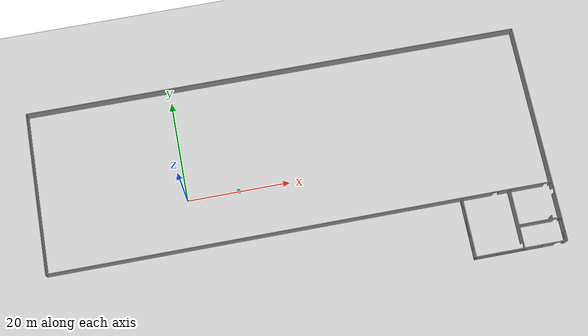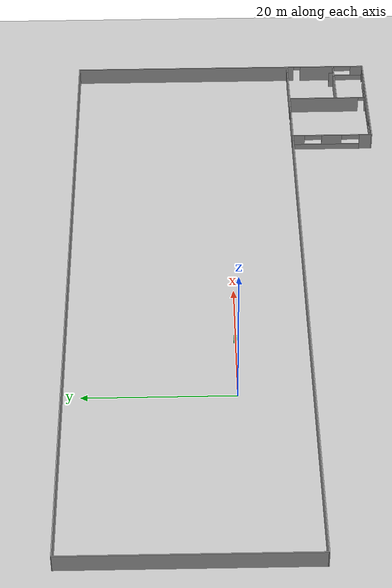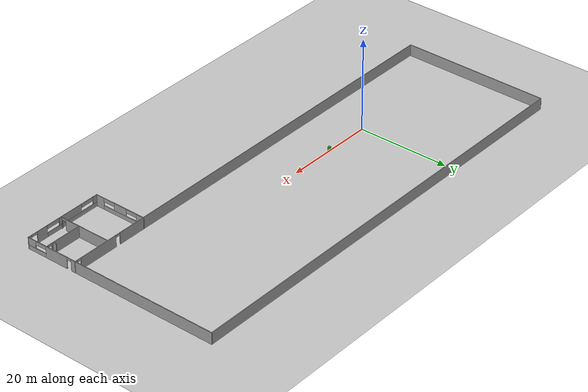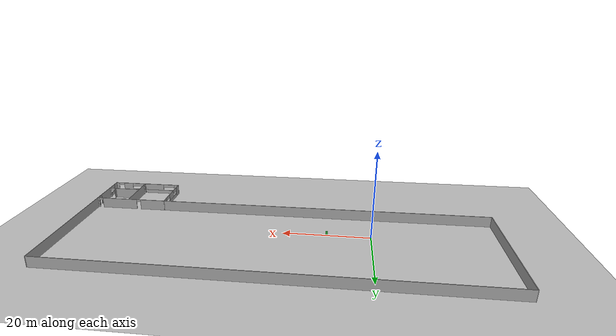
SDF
<sdf version="1.6">
 <world name="default">
  <light name="sun" type="directional">
   <pose>0 0 10 0 -0 0</pose>
   <diffuse>0.8 0.8 0.8 1</diffuse>
   <specular>0.1 0.1 0.1 1</specular>
   <attenuation>
    <range>1000</range>
    <constant>0.9</constant>
    <linear>0.01</linear>
    <quadratic>0.001</quadratic>
   </attenuation>
   <direction>-0.5 0.5 -1</direction>
  </light>
  <model name="ground_plane">
   <static>1</static>
   <link name="link">
    <collision name="collision">
     <geometry><plane><normal>0 0 1</normal><size>100 100</size></plane></geometry>
     <surface><friction><ode><mu>100</mu><mu2>50</mu2></ode></friction></surface>
    </collision>
    <visual name="visual">
     <cast_shadows>0</cast_shadows>
     <geometry><plane><normal>0 0 1</normal><size>100 100</size></plane></geometry>
     <material>
      <script><uri>file://media/materials/scripts/gazebo.material</uri><name>Gazebo/Grey</name></script>
     </material>
    </visual>
   </link>
  </model>
  <gravity>0 0 -9.8</gravity>
  <magnetic_field>6e-06 2.3e-05 -4.2e-05</magnetic_field>
  <atmosphere type="adiabatic"/>
  <physics name="default_physics" default="0" type="ode">
   <max_step_size>0.001</max_step_size>
   <real_time_factor>1</real_time_factor>
   <real_time_update_rate>1000</real_time_update_rate>
  </physics>
  <scene><ambient>0.4 0.4 0.4 1</ambient><background>0.7 0.7 0.7 1</background><shadows>1</shadows></scene>
  <spherical_coordinates>
   <surface_model>EARTH_WGS84</surface_model>
   <latitude_deg>0</latitude_deg>
   <longitude_deg>0</longitude_deg>
   <elevation>0</elevation>
   <heading_deg>0</heading_deg>
  </spherical_coordinates>
  <model name="custom_ground_plane_box">
   <pose>10 0 0.5 0 0 0</pose>
   <link name="link">
    <inertial>
     <mass>100</mass>
     <inertia>
      <ixx>3.33341666667e+3</ixx>
      <ixy>0.0</ixy>
      <ixz>0.0</ixz>
      <iyy>3.33341666667e+3</iyy>
      <iyz>0.0</iyz>
      <izz>6.66666666667e+3</izz>
     </inertia>
    </inertial>
    <collision name="collision">
     <geometry><box><size>0.5 0.5 1.0</size></box></geometry>
     <surface><friction><ode><mu>0</mu><mu2>0</mu2></ode></friction></surface>
    </collision>
    <visual name="visual">
     <geometry><box><size>0.5 0.5 1.0</size></box></geometry>
     <material>
      <script><uri>file://media/materials/scripts/gazebo.material</uri><name>Gazebo/Green</name></script>
     </material>
    </visual>
   </link>
   <plugin name="plannar_mover_plugin" filename="libplannar_mover_plugin.so"/>
  </model>
  <model name="Nave_v1">
   <pose>20.4908 0.522745 0 0 -0 0</pose>
   <link name="Wall_0">
    <collision name="Wall_0_Collision">
     <geometry><box><size>97.25 0.15 2.5</size></box></geometry>
     <pose>0 0 1.25 0 -0 0</pose>
    </collision>
    <visual name="Wall_0_Visual">
     <pose>0 0 1.25 0 -0 0</pose>
     <geometry><box><size>97.25 0.15 2.5</size></box></geometry>
     <material>
      <script><uri>file://media/materials/scripts/gazebo.material</uri><name>Gazebo/Grey</name></script>
      <ambient>1 1 1 1</ambient>
     </material>
    </visual>
    <pose>0.050116 21.8052 0 0 -0 0</pose>
   </link>
   <link name="Wall_1">
    <pose>48.6001 0.005216 0 0 0 -1.5708</pose>
    <visual name="Wall_1_Visual_0">
     <pose>-5.33146 0 1.25 0 -0 0</pose>
     <geometry><box><size>33.0871 0.15 2.5</size></box></geometry>
     <material>
      <script><uri>file://media/materials/scripts/gazebo.material</uri><name>Gazebo/Grey</name></script>
      <ambient>1 1 1 1</ambient>
     </material>
    </visual>
    <collision name="Wall_1_Collision_0">
     <geometry><box><size>33.0871 0.15 2.5</size></box></geometry>
     <pose>-5.33146 0 1.25 0 -0 0</pose>
    </collision>
    <visual name="Wall_1_Visual_1">
     <pose>14.8285 0 1.25 0 -0 0</pose>
     <geometry><box><size>5.22356 0.15 2.5</size></box></geometry>
     <material>
      <script><uri>file://media/materials/scripts/gazebo.material</uri><name>Gazebo/Grey</name></script>
      <ambient>1 1 1 1</ambient>
     </material>
    </visual>
    <collision name="Wall_1_Collision_1">
     <geometry><box><size>5.22356 0.15 2.5</size></box></geometry>
     <pose>14.8285 0 1.25 0 -0 0</pose>
    </collision>
    <visual name="Wall_1_Visual_2">
     <pose>19.6576 0 0.45 0 -0 0</pose>
     <geometry><box><size>4.43476 0.15 0.9</size></box></geometry>
     <material>
      <script><uri>file://media/materials/scripts/gazebo.material</uri><name>Gazebo/Grey</name></script>
      <ambient>1 1 1 1</ambient>
     </material>
    </visual>
    <collision name="Wall_1_Collision_2">
     <geometry><box><size>4.43476 0.15 0.9</size></box></geometry>
     <pose>19.6576 0 0.45 0 -0 0</pose>
    </collision>
    <visual name="Wall_1_Visual_3">
     <pose>20.9226 0 1.7 0 -0 0</pose>
     <geometry><box><size>1.90476 0.15 1.6</size></box></geometry>
     <material>
      <script><uri>file://media/materials/scripts/gazebo.material</uri><name>Gazebo/Grey</name></script>
      <ambient>1 1 1 1</ambient>
     </material>
    </visual>
    <collision name="Wall_1_Collision_3">
     <geometry><box><size>1.90476 0.15 1.6</size></box></geometry>
     <pose>20.9226 0 1.7 0 -0 0</pose>
    </collision>
    <visual name="Wall_1_Visual_4">
     <pose>18.7052 0 2.1 0 -0 0</pose>
     <geometry><box><size>2.53 0.15 0.8</size></box></geometry>
     <material>
      <script><uri>file://media/materials/scripts/gazebo.material</uri><name>Gazebo/Grey</name></script>
      <ambient>1 1 1 1</ambient>
     </material>
    </visual>
    <collision name="Wall_1_Collision_4">
     <geometry><box><size>2.53 0.15 0.8</size></box></geometry>
     <pose>18.7052 0 2.1 0 -0 0</pose>
    </collision>
    <visual name="Wall_1_Visual_5">
     <pose>11.7144 0 2.25 0 -0 0</pose>
     <geometry><box><size>1.00461 0.15 0.5</size></box></geometry>
     <material>
      <script><uri>file://media/materials/scripts/gazebo.material</uri><name>Gazebo/Grey</name></script>
      <ambient>1 1 1 1</ambient>
     </material>
    </visual>
    <collision name="Wall_1_Collision_5">
     <geometry><box><size>1.00461 0.15 0.5</size></box></geometry>
     <pose>11.7144 0 2.25 0 -0 0</pose>
    </collision>
   </link>
   <link name="Wall_11">
    <collision name="Wall_11_Collision">
     <geometry><box><size>0.75 0.15 2.5</size></box></geometry>
     <pose>0 0 1.25 0 -0 0</pose>
    </collision>
    <visual name="Wall_11_Visual">
     <pose>0 0 1.25 0 -0 0</pose>
     <geometry><box><size>0.75 0.15 2.5</size></box></geometry>
     <material>
      <script><uri>file://media/materials/scripts/gazebo.material</uri><name>Gazebo/Grey</name></script>
      <ambient>1 1 1 1</ambient>
     </material>
    </visual>
    <pose>46.8854 -16.9349 0 0 -0 1.5708</pose>
   </link>
   <link name="Wall_17">
    <pose>44.4364 -17.284 0 0 -0 0</pose>
    <visual name="Wall_17_Visual_0">
     <pose>-0.642662 0 1.25 0 -0 0</pose>
     <geometry><box><size>6.96467 0.15 2.5</size></box></geometry>
     <material>
      <script><uri>file://media/materials/scripts/gazebo.material</uri><name>Gazebo/Grey</name></script>
      <ambient>1 1 1 1</ambient>
     </material>
    </visual>
    <collision name="Wall_17_Collision_0">
     <geometry><box><size>6.96467 0.15 2.5</size></box></geometry>
     <pose>-0.642662 0 1.25 0 -0 0</pose>
    </collision>
    <visual name="Wall_17_Visual_1">
     <pose>3.95508 0 1.25 0 -0 0</pose>
     <geometry><box><size>0.339843 0.15 2.5</size></box></geometry>
     <material>
      <script><uri>file://media/materials/scripts/gazebo.material</uri><name>Gazebo/Grey</name></script>
      <ambient>1 1 1 1</ambient>
     </material>
    </visual>
    <collision name="Wall_17_Collision_1">
     <geometry><box><size>0.339843 0.15 2.5</size></box></geometry>
     <pose>3.95508 0 1.25 0 -0 0</pose>
    </collision>
    <visual name="Wall_17_Visual_2">
     <pose>3.31242 0 2.25 0 -0 0</pose>
     <geometry><box><size>0.945482 0.15 0.5</size></box></geometry>
     <material>
      <script><uri>file://media/materials/scripts/gazebo.material</uri><name>Gazebo/Grey</name></script>
      <ambient>1 1 1 1</ambient>
     </material>
    </visual>
    <collision name="Wall_17_Collision_2">
     <geometry><box><size>0.945482 0.15 0.5</size></box></geometry>
     <pose>3.31242 0 2.25 0 -0 0</pose>
    </collision>
   </link>
   <link name="Wall_2">
    <pose>39.8001 -21.7948 0 0 -0 3.14159</pose>
    <visual name="Wall_2_Visual_0">
     <pose>-8.4772 0 1.25 0 -0 0</pose>
     <geometry><box><size>0.795596 0.15 2.5</size></box></geometry>
     <material>
      <script><uri>file://media/materials/scripts/gazebo.material</uri><name>Gazebo/Grey</name></script>
      <ambient>1 1 1 1</ambient>
     </material>
    </visual>
    <collision name="Wall_2_Collision_0">
     <geometry><box><size>0.795596 0.15 2.5</size></box></geometry>
     <pose>-8.4772 0 1.25 0 -0 0</pose>
    </collision>
    <visual name="Wall_2_Visual_1">
     <pose>-5.3555 0 1.25 0 -0 0</pose>
     <geometry><box><size>2.49435 0.15 2.5</size></box></geometry>
     <material>
      <script><uri>file://media/materials/scripts/gazebo.material</uri><name>Gazebo/Grey</name></script>
      <ambient>1 1 1 1</ambient>
     </material>
    </visual>
    <collision name="Wall_2_Collision_1">
     <geometry><box><size>2.49435 0.15 2.5</size></box></geometry>
     <pose>-5.3555 0 1.25 0 -0 0</pose>
    </collision>
    <visual name="Wall_2_Visual_2">
     <pose>2.38334 0 0.45 0 -0 0</pose>
     <geometry><box><size>12.9833 0.15 0.9</size></box></geometry>
     <material>
      <script><uri>file://media/materials/scripts/gazebo.material</uri><name>Gazebo/Grey</name></script>
      <ambient>1 1 1 1</ambient>
     </material>
    </visual>
    <collision name="Wall_2_Collision_2">
     <geometry><box><size>12.9833 0.15 0.9</size></box></geometry>
     <pose>2.38334 0 0.45 0 -0 0</pose>
    </collision>
    <visual name="Wall_2_Visual_3">
     <pose>1.78885 0 1.7 0 -0 0</pose>
     <geometry><box><size>5.74035 0.15 1.6</size></box></geometry>
     <material>
      <script><uri>file://media/materials/scripts/gazebo.material</uri><name>Gazebo/Grey</name></script>
      <ambient>1 1 1 1</ambient>
     </material>
    </visual>
    <collision name="Wall_2_Collision_3">
     <geometry><box><size>5.74035 0.15 1.6</size></box></geometry>
     <pose>1.78885 0 1.7 0 -0 0</pose>
    </collision>
    <visual name="Wall_2_Visual_4">
     <pose>8.28701 0 1.7 0 -0 0</pose>
     <geometry><box><size>1.17598 0.15 1.6</size></box></geometry>
     <material>
      <script><uri>file://media/materials/scripts/gazebo.material</uri><name>Gazebo/Grey</name></script>
      <ambient>1 1 1 1</ambient>
     </material>
    </visual>
    <collision name="Wall_2_Collision_4">
     <geometry><box><size>1.17598 0.15 1.6</size></box></geometry>
     <pose>8.28701 0 1.7 0 -0 0</pose>
    </collision>
    <visual name="Wall_2_Visual_5">
     <pose>-2.59483 0 2.1 0 -0 0</pose>
     <geometry><box><size>3.027 0.15 0.8</size></box></geometry>
     <material>
      <script><uri>file://media/materials/scripts/gazebo.material</uri><name>Gazebo/Grey</name></script>
      <ambient>1 1 1 1</ambient>
     </material>
    </visual>
    <collision name="Wall_2_Collision_5">
     <geometry><box><size>3.027 0.15 0.8</size></box></geometry>
     <pose>-2.59483 0 2.1 0 -0 0</pose>
    </collision>
    <visual name="Wall_2_Visual_6">
     <pose>6.17902 0 2.1 0 -0 0</pose>
     <geometry><box><size>3.04 0.15 0.8</size></box></geometry>
     <material>
      <script><uri>file://media/materials/scripts/gazebo.material</uri><name>Gazebo/Grey</name></script>
      <ambient>1 1 1 1</ambient>
     </material>
    </visual>
    <collision name="Wall_2_Collision_6">
     <geometry><box><size>3.04 0.15 0.8</size></box></geometry>
     <pose>6.17902 0 2.1 0 -0 0</pose>
    </collision>
    <visual name="Wall_2_Visual_7">
     <pose>-7.34104 0 2.25 0 -0 0</pose>
     <geometry><box><size>1.47673 0.15 0.5</size></box></geometry>
     <material>
      <script><uri>file://media/materials/scripts/gazebo.material</uri><name>Gazebo/Grey</name></script>
      <ambient>1 1 1 1</ambient>
     </material>
    </visual>
    <collision name="Wall_2_Collision_7">
     <geometry><box><size>1.47673 0.15 0.5</size></box></geometry>
     <pose>-7.34104 0 2.25 0 -0 0</pose>
    </collision>
   </link>
   <link name="Wall_3">
    <pose>31.0001 -15.9948 0 0 -0 1.5708</pose>
    <visual name="Wall_3_Visual_0">
     <pose>-4.92511 0 1.25 0 -0 0</pose>
     <geometry><box><size>1.89979 0.15 2.5</size></box></geometry>
     <material>
      <script><uri>file://media/materials/scripts/gazebo.material</uri><name>Gazebo/Grey</name></script>
      <ambient>1 1 1 1</ambient>
     </material>
    </visual>
    <collision name="Wall_3_Collision_0">
     <geometry><box><size>1.89979 0.15 2.5</size></box></geometry>
     <pose>-4.92511 0 1.25 0 -0 0</pose>
    </collision>
    <visual name="Wall_3_Visual_1">
     <pose>0.949893 0 0.45 0 -0 0</pose>
     <geometry><box><size>9.85021 0.15 0.9</size></box></geometry>
     <material>
      <script><uri>file://media/materials/scripts/gazebo.material</uri><name>Gazebo/Grey</name></script>
      <ambient>1 1 1 1</ambient>
     </material>
    </visual>
    <collision name="Wall_3_Collision_1">
     <geometry><box><size>9.85021 0.15 0.9</size></box></geometry>
     <pose>0.949893 0 0.45 0 -0 0</pose>
    </collision>
    <visual name="Wall_3_Visual_2">
     <pose>0.084169 0 1.7 0 -0 0</pose>
     <geometry><box><size>2.95077 0.15 1.6</size></box></geometry>
     <material>
      <script><uri>file://media/materials/scripts/gazebo.material</uri><name>Gazebo/Grey</name></script>
      <ambient>1 1 1 1</ambient>
     </material>
    </visual>
    <collision name="Wall_3_Collision_2">
     <geometry><box><size>2.95077 0.15 1.6</size></box></geometry>
     <pose>0.084169 0 1.7 0 -0 0</pose>
    </collision>
    <visual name="Wall_3_Visual_3">
     <pose>4.97478 0 1.7 0 -0 0</pose>
     <geometry><box><size>1.80045 0.15 1.6</size></box></geometry>
     <material>
      <script><uri>file://media/materials/scripts/gazebo.material</uri><name>Gazebo/Grey</name></script>
      <ambient>1 1 1 1</ambient>
     </material>
    </visual>
    <collision name="Wall_3_Collision_3">
     <geometry><box><size>1.80045 0.15 1.6</size></box></geometry>
     <pose>4.97478 0 1.7 0 -0 0</pose>
    </collision>
    <visual name="Wall_3_Visual_4">
     <pose>-2.68321 0 2.1 0 -0 0</pose>
     <geometry><box><size>2.584 0.15 0.8</size></box></geometry>
     <material>
      <script><uri>file://media/materials/scripts/gazebo.material</uri><name>Gazebo/Grey</name></script>
      <ambient>1 1 1 1</ambient>
     </material>
    </visual>
    <collision name="Wall_3_Collision_4">
     <geometry><box><size>2.584 0.15 0.8</size></box></geometry>
     <pose>-2.68321 0 2.1 0 -0 0</pose>
    </collision>
    <visual name="Wall_3_Visual_5">
     <pose>2.81705 0 2.1 0 -0 0</pose>
     <geometry><box><size>2.515 0.15 0.8</size></box></geometry>
     <material>
      <script><uri>file://media/materials/scripts/gazebo.material</uri><name>Gazebo/Grey</name></script>
      <ambient>1 1 1 1</ambient>
     </material>
    </visual>
    <collision name="Wall_3_Collision_5">
     <geometry><box><size>2.515 0.15 0.8</size></box></geometry>
     <pose>2.81705 0 2.1 0 -0 0</pose>
    </collision>
   </link>
   <link name="Wall_4">
    <collision name="Wall_4_Collision">
     <geometry><box><size>79.75 0.15 2.5</size></box></geometry>
     <pose>0 0 1.25 0 -0 0</pose>
    </collision>
    <visual name="Wall_4_Visual">
     <pose>0 0 1.25 0 -0 0</pose>
     <geometry><box><size>79.75 0.15 2.5</size></box></geometry>
     <material>
      <script><uri>file://media/materials/scripts/gazebo.material</uri><name>Gazebo/Grey</name></script>
      <ambient>1 1 1 1</ambient>
     </material>
    </visual>
    <pose>-8.79988 -10.1948 0 0 -0 3.14159</pose>
   </link>
   <link name="Wall_5">
    <collision name="Wall_5_Collision">
     <geometry><box><size>32.1502 0.15 2.5</size></box></geometry>
     <pose>0 0 1.25 0 -0 0</pose>
    </collision>
    <visual name="Wall_5_Visual">
     <pose>0 0 1.25 0 -0 0</pose>
     <geometry><box><size>32.1502 0.15 2.5</size></box></geometry>
     <material>
      <script><uri>file://media/materials/scripts/gazebo.material</uri><name>Gazebo/Grey</name></script>
      <ambient>1 1 1 1</ambient>
     </material>
    </visual>
    <pose>-48.5499 5.80522 0 0 -0 1.56767</pose>
   </link>
   <link name="Wall_7">
    <pose>39.8001 -10.1948 0 0 -0 0</pose>
    <visual name="Wall_7_Visual_0">
     <pose>-5.73764 0 1.25 0 -0 0</pose>
     <geometry><box><size>6.27473 0.15 2.5</size></box></geometry>
     <material>
      <script><uri>file://media/materials/scripts/gazebo.material</uri><name>Gazebo/Grey</name></script>
      <ambient>1 1 1 1</ambient>
     </material>
    </visual>
    <collision name="Wall_7_Collision_0">
     <geometry><box><size>6.27473 0.15 2.5</size></box></geometry>
     <pose>-5.73764 0 1.25 0 -0 0</pose>
    </collision>
    <visual name="Wall_7_Visual_1">
     <pose>2.927 0 1.25 0 -0 0</pose>
     <geometry><box><size>8.98166 0.15 2.5</size></box></geometry>
     <material>
      <script><uri>file://media/materials/scripts/gazebo.material</uri><name>Gazebo/Grey</name></script>
      <ambient>1 1 1 1</ambient>
     </material>
    </visual>
    <collision name="Wall_7_Collision_1">
     <geometry><box><size>8.98166 0.15 2.5</size></box></geometry>
     <pose>2.927 0 1.25 0 -0 0</pose>
    </collision>
    <visual name="Wall_7_Visual_2">
     <pose>8.62911 0 1.25 0 -0 0</pose>
     <geometry><box><size>0.491786 0.15 2.5</size></box></geometry>
     <material>
      <script><uri>file://media/materials/scripts/gazebo.material</uri><name>Gazebo/Grey</name></script>
      <ambient>1 1 1 1</ambient>
     </material>
    </visual>
    <collision name="Wall_7_Collision_2">
     <geometry><box><size>0.491786 0.15 2.5</size></box></geometry>
     <pose>8.62911 0 1.25 0 -0 0</pose>
    </collision>
    <visual name="Wall_7_Visual_3">
     <pose>-2.08205 0 2.25 0 -0 0</pose>
     <geometry><box><size>1.03645 0.15 0.5</size></box></geometry>
     <material>
      <script><uri>file://media/materials/scripts/gazebo.material</uri><name>Gazebo/Grey</name></script>
      <ambient>1 1 1 1</ambient>
     </material>
    </visual>
    <collision name="Wall_7_Collision_3">
     <geometry><box><size>1.03645 0.15 0.5</size></box></geometry>
     <pose>-2.08205 0 2.25 0 -0 0</pose>
    </collision>
    <visual name="Wall_7_Visual_4">
     <pose>7.90052 0 2.25 0 -0 0</pose>
     <geometry><box><size>0.96538 0.15 0.5</size></box></geometry>
     <material>
      <script><uri>file://media/materials/scripts/gazebo.material</uri><name>Gazebo/Grey</name></script>
      <ambient>1 1 1 1</ambient>
     </material>
    </visual>
    <collision name="Wall_7_Collision_4">
     <geometry><box><size>0.96538 0.15 0.5</size></box></geometry>
     <pose>7.90052 0 2.25 0 -0 0</pose>
    </collision>
   </link>
   <link name="Wall_9">
    <pose>40.3312 -16.0055 0 0 0 -1.5708</pose>
    <visual name="Wall_9_Visual_0">
     <pose>-0.670161 0 1.25 0 -0 0</pose>
     <geometry><box><size>10.4097 0.15 2.5</size></box></geometry>
     <material>
      <script><uri>file://media/materials/scripts/gazebo.material</uri><name>Gazebo/Grey</name></script>
      <ambient>1 1 1 1</ambient>
     </material>
    </visual>
    <collision name="Wall_9_Collision_0">
     <geometry><box><size>10.4097 0.15 2.5</size></box></geometry>
     <pose>-0.670161 0 1.25 0 -0 0</pose>
    </collision>
    <visual name="Wall_9_Visual_1">
     <pose>5.68895 0 1.25 0 -0 0</pose>
     <geometry><box><size>0.372099 0.15 2.5</size></box></geometry>
     <material>
      <script><uri>file://media/materials/scripts/gazebo.material</uri><name>Gazebo/Grey</name></script>
      <ambient>1 1 1 1</ambient>
     </material>
    </visual>
    <collision name="Wall_9_Collision_1">
     <geometry><box><size>0.372099 0.15 2.5</size></box></geometry>
     <pose>5.68895 0 1.25 0 -0 0</pose>
    </collision>
    <visual name="Wall_9_Visual_2">
     <pose>5.01879 0 2.25 0 -0 0</pose>
     <geometry><box><size>0.968223 0.15 0.5</size></box></geometry>
     <material>
      <script><uri>file://media/materials/scripts/gazebo.material</uri><name>Gazebo/Grey</name></script>
      <ambient>1 1 1 1</ambient>
     </material>
    </visual>
    <collision name="Wall_9_Collision_2">
     <geometry><box><size>0.968223 0.15 0.5</size></box></geometry>
     <pose>5.01879 0 2.25 0 -0 0</pose>
    </collision>
   </link>
   <static>1</static>
  </model>
 </world>
</sdf>
